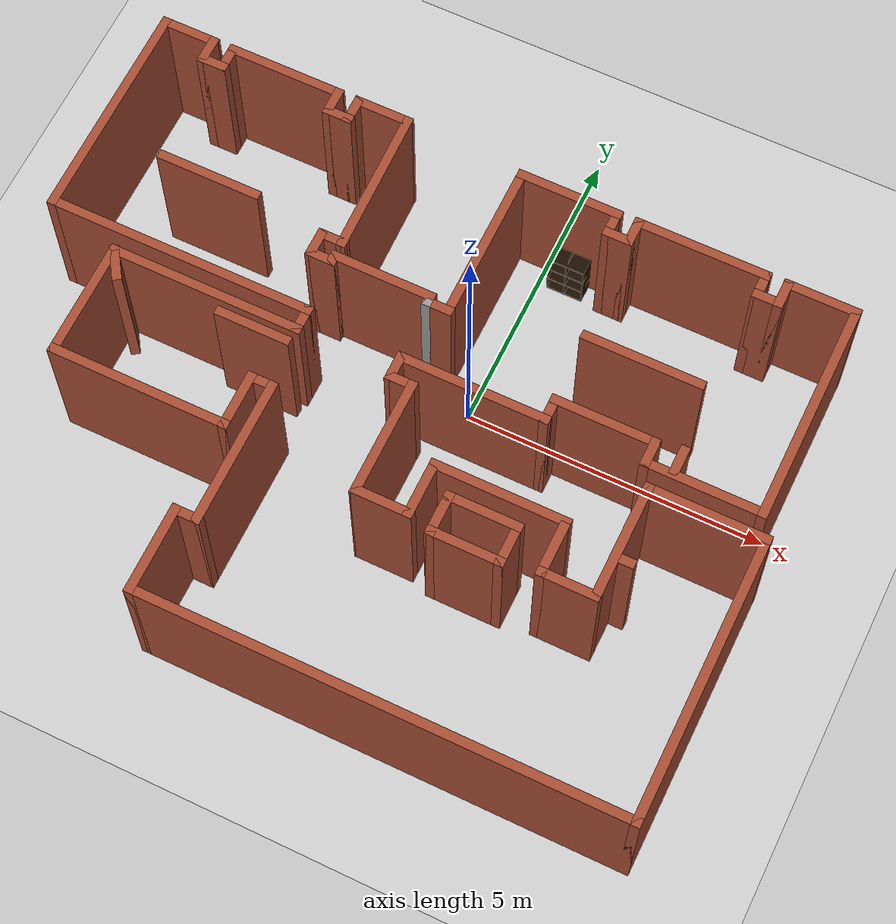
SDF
<sdf version="1.6">
 <world name="default">
  <light name="sun" type="directional">
   <pose>0 0 10 0 -0 0</pose>
   <diffuse>0.8 0.8 0.8 1</diffuse>
   <specular>0.2 0.2 0.2 1</specular>
   <attenuation>
    <range>1000</range>
    <constant>0.9</constant>
    <linear>0.01</linear>
    <quadratic>0.001</quadratic>
   </attenuation>
   <direction>-0.5 0.1 -0.9</direction>
  </light>
  <model name="ground_plane">
   <static>1</static>
   <link name="link">
    <collision name="collision">
     <geometry><plane><normal>0 0 1</normal><size>100 100</size></plane></geometry>
     <surface>
      <contact><collide_bitmask>65535</collide_bitmask></contact>
      <friction><ode><mu>100</mu><mu2>50</mu2></ode></friction>
     </surface>
    </collision>
    <visual name="visual">
     <cast_shadows>0</cast_shadows>
     <geometry><plane><normal>0 0 1</normal><size>100 100</size></plane></geometry>
     <material>
      <script><uri>file://media/materials/scripts/gazebo.material</uri><name>Gazebo/Grey</name></script>
     </material>
    </visual>
   </link>
  </model>
  <gravity>0 0 -9.8</gravity>
  <magnetic_field>6e-06 2.3e-05 -4.2e-05</magnetic_field>
  <atmosphere type="adiabatic"/>
  <physics name="default_physics" default="0" type="ode">
   <max_step_size>0.001</max_step_size>
   <real_time_factor>1</real_time_factor>
   <real_time_update_rate>1000</real_time_update_rate>
  </physics>
  <scene><ambient>0.4 0.4 0.4 1</ambient><background>0.7 0.7 0.7 1</background><shadows>1</shadows></scene>
  <audio><device>default</device></audio>
  <spherical_coordinates>
   <surface_model>EARTH_WGS84</surface_model>
   <latitude_deg>0</latitude_deg>
   <longitude_deg>0</longitude_deg>
   <elevation>0</elevation>
   <heading_deg>0</heading_deg>
  </spherical_coordinates>
  <model name="map_34">
   <pose>-0.8116 -1.2217 0 0 -0 0</pose>
   <link name="Wall_0">
    <collision name="Wall_0_Collision">
     <geometry><box><size>1 0.15 2.5</size></box></geometry>
     <pose>0 0 1.25 0 -0 0</pose>
    </collision>
    <visual name="Wall_0_Visual">
     <pose>0 0 1.25 0 -0 0</pose>
     <geometry><box><size>1 0.15 2.5</size></box></geometry>
     <material>
      <script><uri>file://media/materials/scripts/gazebo.material</uri><name>Gazebo/Bricks</name></script>
      <ambient>1 1 1 1</ambient>
     </material>
     <meta><layer>0</layer></meta>
    </visual>
    <pose>-2.15 4.32421 0 0 -0 3.14159</pose>
   </link>
   <link name="Wall_1">
    <collision name="Wall_1_Collision">
     <geometry><box><size>0.5 0.15 2.5</size></box></geometry>
     <pose>0 0 1.25 0 -0 0</pose>
    </collision>
    <visual name="Wall_1_Visual">
     <pose>0 0 1.25 0 -0 0</pose>
     <geometry><box><size>0.5 0.15 2.5</size></box></geometry>
     <material>
      <script><uri>file://media/materials/scripts/gazebo.material</uri><name>Gazebo/Bricks</name></script>
      <ambient>1 1 1 1</ambient>
     </material>
     <meta><layer>0</layer></meta>
    </visual>
    <pose>-2.575 4.14921 0 0 -0 -1.5708</pose>
   </link>
   <link name="Wall_10">
    <collision name="Wall_10_Collision">
     <geometry><box><size>0.5 0.15 2.5</size></box></geometry>
     <pose>0 0 1.25 0 -0 0</pose>
    </collision>
    <visual name="Wall_10_Visual">
     <pose>0 0 1.25 0 -0 0</pose>
     <geometry><box><size>0.5 0.15 2.5</size></box></geometry>
     <material>
      <script><uri>file://media/materials/scripts/gazebo.material</uri><name>Gazebo/Bricks</name></script>
      <ambient>1 1 1 1</ambient>
     </material>
     <meta><layer>0</layer></meta>
    </visual>
    <pose>-4.95 3.97421 0 0 -0 3.14159</pose>
   </link>
   <link name="Wall_11">
    <collision name="Wall_11_Collision">
     <geometry><box><size>0.5 0.15 2.5</size></box></geometry>
     <pose>0 0 1.25 0 -0 0</pose>
    </collision>
    <visual name="Wall_11_Visual">
     <pose>0 0 1.25 0 -0 0</pose>
     <geometry><box><size>0.5 0.15 2.5</size></box></geometry>
     <material>
      <script><uri>file://media/materials/scripts/gazebo.material</uri><name>Gazebo/Bricks</name></script>
      <ambient>1 1 1 1</ambient>
     </material>
     <meta><layer>0</layer></meta>
    </visual>
    <pose>-5.125 4.14921 0 0 -0 1.5708</pose>
   </link>
   <link name="Wall_12">
    <collision name="Wall_12_Collision">
     <geometry><box><size>1 0.15 2.5</size></box></geometry>
     <pose>0 0 1.25 0 -0 0</pose>
    </collision>
    <visual name="Wall_12_Visual">
     <pose>0 0 1.25 0 -0 0</pose>
     <geometry><box><size>1 0.15 2.5</size></box></geometry>
     <material>
      <script><uri>file://media/materials/scripts/gazebo.material</uri><name>Gazebo/Bricks</name></script>
      <ambient>1 1 1 1</ambient>
     </material>
     <meta><layer>0</layer></meta>
    </visual>
    <pose>-5.55 4.32421 0 0 -0 3.14159</pose>
   </link>
   <link name="Wall_13">
    <collision name="Wall_13_Collision">
     <geometry><box><size>3.75 0.15 2.5</size></box></geometry>
     <pose>0 0 1.25 0 -0 0</pose>
    </collision>
    <visual name="Wall_13_Visual">
     <pose>0 0 1.25 0 -0 0</pose>
     <geometry><box><size>3.75 0.15 2.5</size></box></geometry>
     <material>
      <script><uri>file://media/materials/scripts/gazebo.material</uri><name>Gazebo/Bricks</name></script>
      <ambient>1 1 1 1</ambient>
     </material>
     <meta><layer>0</layer></meta>
    </visual>
    <pose>-5.975 2.52421 0 0 -0 -1.5708</pose>
   </link>
   <link name="Wall_14">
    <collision name="Wall_14_Collision">
     <geometry><box><size>4.5 0.15 2.5</size></box></geometry>
     <pose>0 0 1.25 0 -0 0</pose>
    </collision>
    <visual name="Wall_14_Visual">
     <pose>0 0 1.25 0 -0 0</pose>
     <geometry><box><size>4.5 0.15 2.5</size></box></geometry>
     <material>
      <script><uri>file://media/materials/scripts/gazebo.material</uri><name>Gazebo/Bricks</name></script>
      <ambient>1 1 1 1</ambient>
     </material>
     <meta><layer>0</layer></meta>
    </visual>
    <pose>-3.8 0.724211 0 0 -0 0</pose>
   </link>
   <link name="Wall_15">
    <collision name="Wall_15_Collision">
     <geometry><box><size>0.5 0.15 2.5</size></box></geometry>
     <pose>0 0 1.25 0 -0 0</pose>
    </collision>
    <visual name="Wall_15_Visual">
     <pose>0 0 1.25 0 -0 0</pose>
     <geometry><box><size>0.5 0.15 2.5</size></box></geometry>
     <material>
      <script><uri>file://media/materials/scripts/gazebo.material</uri><name>Gazebo/Bricks</name></script>
      <ambient>1 1 1 1</ambient>
     </material>
     <meta><layer>0</layer></meta>
    </visual>
    <pose>-1.625 0.549211 0 0 -0 -1.5708</pose>
   </link>
   <link name="Wall_16">
    <collision name="Wall_16_Collision">
     <geometry><box><size>3.25 0.15 2.5</size></box></geometry>
     <pose>0 0 1.25 0 -0 0</pose>
    </collision>
    <visual name="Wall_16_Visual">
     <pose>0 0 1.25 0 -0 0</pose>
     <geometry><box><size>3.25 0.15 2.5</size></box></geometry>
     <material>
      <script><uri>file://media/materials/scripts/gazebo.material</uri><name>Gazebo/Bricks</name></script>
      <ambient>1 1 1 1</ambient>
     </material>
     <meta><layer>0</layer></meta>
    </visual>
    <pose>-3.175 0.374211 0 0 -0 3.14159</pose>
   </link>
   <link name="Wall_17">
    <collision name="Wall_17_Collision">
     <geometry><box><size>2 0.15 2.5</size></box></geometry>
     <pose>0 0 1.25 0 -0 0</pose>
    </collision>
    <visual name="Wall_17_Visual">
     <pose>0 0 1.25 0 -0 0</pose>
     <geometry><box><size>2 0.15 2.5</size></box></geometry>
     <material>
      <script><uri>file://media/materials/scripts/gazebo.material</uri><name>Gazebo/Bricks</name></script>
      <ambient>1 1 1 1</ambient>
     </material>
     <meta><layer>0</layer></meta>
    </visual>
    <pose>-4.725 -0.550789 0 0 -0 -1.5708</pose>
   </link>
   <link name="Wall_18">
    <collision name="Wall_18_Collision">
     <geometry><box><size>3 0.15 2.5</size></box></geometry>
     <pose>0 0 1.25 0 -0 0</pose>
    </collision>
    <visual name="Wall_18_Visual">
     <pose>0 0 1.25 0 -0 0</pose>
     <geometry><box><size>3 0.15 2.5</size></box></geometry>
     <material>
      <script><uri>file://media/materials/scripts/gazebo.material</uri><name>Gazebo/Bricks</name></script>
      <ambient>1 1 1 1</ambient>
     </material>
     <meta><layer>0</layer></meta>
    </visual>
    <pose>-3.3 -1.47579 0 0 -0 0</pose>
   </link>
   <link name="Wall_19">
    <collision name="Wall_19_Collision">
     <geometry><box><size>1 0.15 2.5</size></box></geometry>
     <pose>0 0 1.25 0 -0 0</pose>
    </collision>
    <visual name="Wall_19_Visual">
     <pose>0 0 1.25 0 -0 0</pose>
     <geometry><box><size>1 0.15 2.5</size></box></geometry>
     <material>
      <script><uri>file://media/materials/scripts/gazebo.material</uri><name>Gazebo/Bricks</name></script>
      <ambient>1 1 1 1</ambient>
     </material>
     <meta><layer>0</layer></meta>
    </visual>
    <pose>-1.875 -1.05079 0 0 -0 1.5708</pose>
   </link>
   <link name="Wall_2">
    <collision name="Wall_2_Collision">
     <geometry><box><size>0.5 0.15 2.5</size></box></geometry>
     <pose>0 0 1.25 0 -0 0</pose>
    </collision>
    <visual name="Wall_2_Visual">
     <pose>0 0 1.25 0 -0 0</pose>
     <geometry><box><size>0.5 0.15 2.5</size></box></geometry>
     <material>
      <script><uri>file://media/materials/scripts/gazebo.material</uri><name>Gazebo/Bricks</name></script>
      <ambient>1 1 1 1</ambient>
     </material>
     <meta><layer>0</layer></meta>
    </visual>
    <pose>-2.75 3.97421 0 0 -0 3.14159</pose>
   </link>
   <link name="Wall_20">
    <collision name="Wall_20_Collision">
     <geometry><box><size>0.5 0.15 2.5</size></box></geometry>
     <pose>0 0 1.25 0 -0 0</pose>
    </collision>
    <visual name="Wall_20_Visual">
     <pose>0 0 1.25 0 -0 0</pose>
     <geometry><box><size>0.5 0.15 2.5</size></box></geometry>
     <material>
      <script><uri>file://media/materials/scripts/gazebo.material</uri><name>Gazebo/Bricks</name></script>
      <ambient>1 1 1 1</ambient>
     </material>
     <meta><layer>0</layer></meta>
    </visual>
    <pose>-1.7 -0.625789 0 0 -0 0</pose>
   </link>
   <link name="Wall_21">
    <collision name="Wall_21_Collision">
     <geometry><box><size>2.5 0.15 2.5</size></box></geometry>
     <pose>0 0 1.25 0 -0 0</pose>
    </collision>
    <visual name="Wall_21_Visual">
     <pose>0 0 1.25 0 -0 0</pose>
     <geometry><box><size>2.5 0.15 2.5</size></box></geometry>
     <material>
      <script><uri>file://media/materials/scripts/gazebo.material</uri><name>Gazebo/Bricks</name></script>
      <ambient>1 1 1 1</ambient>
     </material>
     <meta><layer>0</layer></meta>
    </visual>
    <pose>-1.525 -1.80079 0 0 -0 -1.5708</pose>
   </link>
   <link name="Wall_22">
    <collision name="Wall_22_Collision">
     <geometry><box><size>0.5 0.15 2.5</size></box></geometry>
     <pose>0 0 1.25 0 -0 0</pose>
    </collision>
    <visual name="Wall_22_Visual">
     <pose>0 0 1.25 0 -0 0</pose>
     <geometry><box><size>0.5 0.15 2.5</size></box></geometry>
     <material>
      <script><uri>file://media/materials/scripts/gazebo.material</uri><name>Gazebo/Bricks</name></script>
      <ambient>1 1 1 1</ambient>
     </material>
     <meta><layer>0</layer></meta>
    </visual>
    <pose>-1.7 -2.97579 0 0 -0 3.14159</pose>
   </link>
   <link name="Wall_23">
    <collision name="Wall_23_Collision">
     <geometry><box><size>1.5 0.15 2.5</size></box></geometry>
     <pose>0 0 1.25 0 -0 0</pose>
    </collision>
    <visual name="Wall_23_Visual">
     <pose>0 0 1.25 0 -0 0</pose>
     <geometry><box><size>1.5 0.15 2.5</size></box></geometry>
     <material>
      <script><uri>file://media/materials/scripts/gazebo.material</uri><name>Gazebo/Bricks</name></script>
      <ambient>1 1 1 1</ambient>
     </material>
     <meta><layer>0</layer></meta>
    </visual>
    <pose>-1.875 -3.65079 0 0 -0 -1.5708</pose>
   </link>
   <link name="Wall_24">
    <collision name="Wall_24_Collision">
     <geometry><box><size>8 0.15 2.5</size></box></geometry>
     <pose>0 0 1.25 0 -0 0</pose>
    </collision>
    <visual name="Wall_24_Visual">
     <pose>0 0 1.25 0 -0 0</pose>
     <geometry><box><size>8 0.15 2.5</size></box></geometry>
     <material>
      <script><uri>file://media/materials/scripts/gazebo.material</uri><name>Gazebo/Bricks</name></script>
      <ambient>0.435294 0.796078 0.67451 1</ambient>
     </material>
     <meta><layer>0</layer></meta>
    </visual>
    <pose>2.05 -4.32579 0 0 -0 0</pose>
   </link>
   <link name="Wall_25">
    <collision name="Wall_25_Collision">
     <geometry><box><size>4.75 0.15 2.5</size></box></geometry>
     <pose>0 0 1.25 0 -0 0</pose>
    </collision>
    <visual name="Wall_25_Visual">
     <pose>0 0 1.25 0 -0 0</pose>
     <geometry><box><size>4.75 0.15 2.5</size></box></geometry>
     <material>
      <script><uri>file://media/materials/scripts/gazebo.material</uri><name>Gazebo/Bricks</name></script>
      <ambient>1 1 1 1</ambient>
     </material>
     <meta><layer>0</layer></meta>
    </visual>
    <pose>5.975 -2.02579 0 0 -0 1.5708</pose>
   </link>
   <link name="Wall_26">
    <collision name="Wall_26_Collision">
     <geometry><box><size>2 0.15 2.5</size></box></geometry>
     <pose>0 0 1.25 0 -0 0</pose>
    </collision>
    <visual name="Wall_26_Visual">
     <pose>0 0 1.25 0 -0 0</pose>
     <geometry><box><size>2 0.15 2.5</size></box></geometry>
     <material>
      <script><uri>file://media/materials/scripts/gazebo.material</uri><name>Gazebo/Bricks</name></script>
      <ambient>1 1 1 1</ambient>
     </material>
     <meta><layer>0</layer></meta>
    </visual>
    <pose>5.05 0.274211 0 0 -0 3.14159</pose>
   </link>
   <link name="Wall_27">
    <collision name="Wall_27_Collision">
     <geometry><box><size>2 0.15 2.5</size></box></geometry>
     <pose>0 0 1.25 0 -0 0</pose>
    </collision>
    <visual name="Wall_27_Visual">
     <pose>0 0 1.25 0 -0 0</pose>
     <geometry><box><size>2 0.15 2.5</size></box></geometry>
     <material>
      <script><uri>file://media/materials/scripts/gazebo.material</uri><name>Gazebo/Bricks</name></script>
      <ambient>1 1 1 1</ambient>
     </material>
     <meta><layer>0</layer></meta>
    </visual>
    <pose>4.125 -0.650789 0 0 -0 -1.5708</pose>
   </link>
   <link name="Wall_28">
    <collision name="Wall_28_Collision">
     <geometry><box><size>1 0.15 2.5</size></box></geometry>
     <pose>0 0 1.25 0 -0 0</pose>
    </collision>
    <visual name="Wall_28_Visual">
     <pose>0 0 1.25 0 -0 0</pose>
     <geometry><box><size>1 0.15 2.5</size></box></geometry>
     <material>
      <script><uri>file://media/materials/scripts/gazebo.material</uri><name>Gazebo/Bricks</name></script>
      <ambient>1 1 1 1</ambient>
     </material>
     <meta><layer>0</layer></meta>
    </visual>
    <pose>3.7 -1.57579 0 0 -0 3.14159</pose>
   </link>
   <link name="Wall_29">
    <collision name="Wall_29_Collision">
     <geometry><box><size>1 0.15 2.5</size></box></geometry>
     <pose>0 0 1.25 0 -0 0</pose>
    </collision>
    <visual name="Wall_29_Visual">
     <pose>0 0 1.25 0 -0 0</pose>
     <geometry><box><size>1 0.15 2.5</size></box></geometry>
     <material>
      <script><uri>file://media/materials/scripts/gazebo.material</uri><name>Gazebo/Bricks</name></script>
      <ambient>1 1 1 1</ambient>
     </material>
     <meta><layer>0</layer></meta>
    </visual>
    <pose>3.275 -1.15079 0 0 -0 1.5708</pose>
   </link>
   <link name="Wall_30">
    <collision name="Wall_30_Collision">
     <geometry><box><size>2.25 0.15 2.5</size></box></geometry>
     <pose>0 0 1.25 0 -0 0</pose>
    </collision>
    <visual name="Wall_30_Visual">
     <pose>0 0 1.25 0 -0 0</pose>
     <geometry><box><size>2.25 0.15 2.5</size></box></geometry>
     <material>
      <script><uri>file://media/materials/scripts/gazebo.material</uri><name>Gazebo/Bricks</name></script>
      <ambient>1 1 1 1</ambient>
     </material>
     <meta><layer>0</layer></meta>
    </visual>
    <pose>2.225 -0.725789 0 0 -0 3.14159</pose>
   </link>
   <link name="Wall_31">
    <collision name="Wall_31_Collision">
     <geometry><box><size>1 0.15 2.5</size></box></geometry>
     <pose>0 0 1.25 0 -0 0</pose>
    </collision>
    <visual name="Wall_31_Visual">
     <pose>0 0 1.25 0 -0 0</pose>
     <geometry><box><size>1 0.15 2.5</size></box></geometry>
     <material>
      <script><uri>file://media/materials/scripts/gazebo.material</uri><name>Gazebo/Bricks</name></script>
      <ambient>1 1 1 1</ambient>
     </material>
     <meta><layer>0</layer></meta>
    </visual>
    <pose>1.175 -1.15079 0 0 -0 -1.5708</pose>
   </link>
   <link name="Wall_32">
    <collision name="Wall_32_Collision">
     <geometry><box><size>1 0.15 2.5</size></box></geometry>
     <pose>0 0 1.25 0 -0 0</pose>
    </collision>
    <visual name="Wall_32_Visual">
     <pose>0 0 1.25 0 -0 0</pose>
     <geometry><box><size>1 0.15 2.5</size></box></geometry>
     <material>
      <script><uri>file://media/materials/scripts/gazebo.material</uri><name>Gazebo/Bricks</name></script>
      <ambient>1 1 1 1</ambient>
     </material>
     <meta><layer>0</layer></meta>
    </visual>
    <pose>0.75 -1.57579 0 0 -0 3.14159</pose>
   </link>
   <link name="Wall_33">
    <collision name="Wall_33_Collision">
     <geometry><box><size>2 0.15 2.5</size></box></geometry>
     <pose>0 0 1.25 0 -0 0</pose>
    </collision>
    <visual name="Wall_33_Visual">
     <pose>0 0 1.25 0 -0 0</pose>
     <geometry><box><size>2 0.15 2.5</size></box></geometry>
     <material>
      <script><uri>file://media/materials/scripts/gazebo.material</uri><name>Gazebo/Bricks</name></script>
      <ambient>1 1 1 1</ambient>
     </material>
     <meta><layer>0</layer></meta>
    </visual>
    <pose>0.325 -0.650789 0 0 -0 1.5708</pose>
   </link>
   <link name="Wall_34">
    <collision name="Wall_34_Collision">
     <geometry><box><size>0.5 0.15 2.5</size></box></geometry>
     <pose>0 0 1.25 0 -0 0</pose>
    </collision>
    <visual name="Wall_34_Visual">
     <pose>0 0 1.25 0 -0 0</pose>
     <geometry><box><size>0.5 0.15 2.5</size></box></geometry>
     <material>
      <script><uri>file://media/materials/scripts/gazebo.material</uri><name>Gazebo/Bricks</name></script>
      <ambient>1 1 1 1</ambient>
     </material>
     <meta><layer>0</layer></meta>
    </visual>
    <pose>0.15 0.274211 0 0 -0 3.14159</pose>
   </link>
   <link name="Wall_35">
    <collision name="Wall_35_Collision">
     <geometry><box><size>0.5 0.15 2.5</size></box></geometry>
     <pose>0 0 1.25 0 -0 0</pose>
    </collision>
    <visual name="Wall_35_Visual">
     <pose>0 0 1.25 0 -0 0</pose>
     <geometry><box><size>0.5 0.15 2.5</size></box></geometry>
     <material>
      <script><uri>file://media/materials/scripts/gazebo.material</uri><name>Gazebo/Bricks</name></script>
      <ambient>1 1 1 1</ambient>
     </material>
     <meta><layer>0</layer></meta>
    </visual>
    <pose>-0.025 0.449211 0 0 -0 1.5708</pose>
   </link>
   <link name="Wall_36">
    <collision name="Wall_36_Collision">
     <geometry><box><size>2.5 0.15 2.5</size></box></geometry>
     <pose>0 0 1.25 0 -0 0</pose>
    </collision>
    <visual name="Wall_36_Visual">
     <pose>0 0 1.25 0 -0 0</pose>
     <geometry><box><size>2.5 0.15 2.5</size></box></geometry>
     <material>
      <script><uri>file://media/materials/scripts/gazebo.material</uri><name>Gazebo/Bricks</name></script>
      <ambient>1 1 1 1</ambient>
     </material>
     <meta><layer>0</layer></meta>
    </visual>
    <pose>1.15 0.624211 0 0 -0 0</pose>
   </link>
   <link name="Wall_37">
    <collision name="Wall_37_Collision">
     <geometry><box><size>0.5 0.15 2.5</size></box></geometry>
     <pose>0 0 1.25 0 -0 0</pose>
    </collision>
    <visual name="Wall_37_Visual">
     <pose>0 0 1.25 0 -0 0</pose>
     <geometry><box><size>0.5 0.15 2.5</size></box></geometry>
     <material>
      <script><uri>file://media/materials/scripts/gazebo.material</uri><name>Gazebo/Bricks</name></script>
      <ambient>1 1 1 1</ambient>
     </material>
     <meta><layer>0</layer></meta>
    </visual>
    <pose>2.325 0.799211 0 0 -0 1.5708</pose>
   </link>
   <link name="Wall_38">
    <collision name="Wall_38_Collision">
     <geometry><box><size>1.75 0.15 2.5</size></box></geometry>
     <pose>0 0 1.25 0 -0 0</pose>
    </collision>
    <visual name="Wall_38_Visual">
     <pose>0 0 1.25 0 -0 0</pose>
     <geometry><box><size>1.75 0.15 2.5</size></box></geometry>
     <material>
      <script><uri>file://media/materials/scripts/gazebo.material</uri><name>Gazebo/Bricks</name></script>
      <ambient>1 1 1 1</ambient>
     </material>
     <meta><layer>0</layer></meta>
    </visual>
    <pose>3.125 0.974211 0 0 -0 0</pose>
   </link>
   <link name="Wall_39">
    <collision name="Wall_39_Collision">
     <geometry><box><size>0.5 0.15 2.5</size></box></geometry>
     <pose>0 0 1.25 0 -0 0</pose>
    </collision>
    <visual name="Wall_39_Visual">
     <pose>0 0 1.25 0 -0 0</pose>
     <geometry><box><size>0.5 0.15 2.5</size></box></geometry>
     <material>
      <script><uri>file://media/materials/scripts/gazebo.material</uri><name>Gazebo/Bricks</name></script>
      <ambient>1 1 1 1</ambient>
     </material>
     <meta><layer>0</layer></meta>
    </visual>
    <pose>3.925 0.799211 0 0 -0 -1.5708</pose>
   </link>
   <link name="Wall_40">
    <collision name="Wall_40_Collision">
     <geometry><box><size>2 0.15 2.5</size></box></geometry>
     <pose>0 0 1.25 0 -0 0</pose>
    </collision>
    <visual name="Wall_40_Visual">
     <pose>0 0 1.25 0 -0 0</pose>
     <geometry><box><size>2 0.15 2.5</size></box></geometry>
     <material>
      <script><uri>file://media/materials/scripts/gazebo.material</uri><name>Gazebo/Bricks</name></script>
      <ambient>1 1 1 1</ambient>
     </material>
     <meta><layer>0</layer></meta>
    </visual>
    <pose>4.85 0.624211 0 0 -0 0</pose>
   </link>
   <link name="Wall_5">
    <collision name="Wall_5_Collision">
     <geometry><box><size>0.5 0.15 2.5</size></box></geometry>
     <pose>0 0 1.25 0 -0 0</pose>
    </collision>
    <visual name="Wall_5_Visual">
     <pose>0 0 1.25 0 -0 0</pose>
     <geometry><box><size>0.5 0.15 2.5</size></box></geometry>
     <material>
      <script><uri>file://media/materials/scripts/gazebo.material</uri><name>Gazebo/Bricks</name></script>
      <ambient>1 1 1 1</ambient>
     </material>
     <meta><layer>0</layer></meta>
    </visual>
    <pose>-2.925 4.14921 0 0 -0 1.5708</pose>
   </link>
   <link name="Wall_54">
    <collision name="Wall_54_Collision">
     <geometry><box><size>3.75 0.15 2.5</size></box></geometry>
     <pose>0 0 1.25 0 -0 0</pose>
    </collision>
    <visual name="Wall_54_Visual">
     <pose>0 0 1.25 0 -0 0</pose>
     <geometry><box><size>3.75 0.15 2.5</size></box></geometry>
     <material>
      <script><uri>file://media/materials/scripts/gazebo.material</uri><name>Gazebo/Bricks</name></script>
      <ambient>1 1 1 1</ambient>
     </material>
     <meta><layer>0</layer></meta>
    </visual>
    <pose>5.775 2.42421 0 0 -0 1.5708</pose>
   </link>
   <link name="Wall_55">
    <collision name="Wall_55_Collision">
     <geometry><box><size>1.25 0.15 2.5</size></box></geometry>
     <pose>0 0 1.25 0 -0 0</pose>
    </collision>
    <visual name="Wall_55_Visual">
     <pose>0 0 1.25 0 -0 0</pose>
     <geometry><box><size>1.25 0.15 2.5</size></box></geometry>
     <material>
      <script><uri>file://media/materials/scripts/gazebo.material</uri><name>Gazebo/Bricks</name></script>
      <ambient>1 1 1 1</ambient>
     </material>
     <meta><layer>0</layer></meta>
    </visual>
    <pose>5.225 4.22421 0 0 -0 3.14159</pose>
   </link>
   <link name="Wall_56">
    <collision name="Wall_56_Collision">
     <geometry><box><size>0.5 0.15 2.5</size></box></geometry>
     <pose>0 0 1.25 0 -0 0</pose>
    </collision>
    <visual name="Wall_56_Visual">
     <pose>0 0 1.25 0 -0 0</pose>
     <geometry><box><size>0.5 0.15 2.5</size></box></geometry>
     <material>
      <script><uri>file://media/materials/scripts/gazebo.material</uri><name>Gazebo/Bricks</name></script>
      <ambient>1 1 1 1</ambient>
     </material>
     <meta><layer>0</layer></meta>
    </visual>
    <pose>4.675 4.04921 0 0 -0 -1.5708</pose>
   </link>
   <link name="Wall_57">
    <collision name="Wall_57_Collision">
     <geometry><box><size>0.5 0.15 2.5</size></box></geometry>
     <pose>0 0 1.25 0 -0 0</pose>
    </collision>
    <visual name="Wall_57_Visual">
     <pose>0 0 1.25 0 -0 0</pose>
     <geometry><box><size>0.5 0.15 2.5</size></box></geometry>
     <material>
      <script><uri>file://media/materials/scripts/gazebo.material</uri><name>Gazebo/Bricks</name></script>
      <ambient>1 1 1 1</ambient>
     </material>
     <meta><layer>0</layer></meta>
    </visual>
    <pose>4.5 3.87421 0 0 -0 3.14159</pose>
   </link>
   <link name="Wall_58">
    <collision name="Wall_58_Collision">
     <geometry><box><size>0.5 0.15 2.5</size></box></geometry>
     <pose>0 0 1.25 0 -0 0</pose>
    </collision>
    <visual name="Wall_58_Visual">
     <pose>0 0 1.25 0 -0 0</pose>
     <geometry><box><size>0.5 0.15 2.5</size></box></geometry>
     <material>
      <script><uri>file://media/materials/scripts/gazebo.material</uri><name>Gazebo/Bricks</name></script>
      <ambient>1 1 1 1</ambient>
     </material>
     <meta><layer>0</layer></meta>
    </visual>
    <pose>4.325 4.04921 0 0 -0 1.5708</pose>
   </link>
   <link name="Wall_59">
    <collision name="Wall_59_Collision">
     <geometry><box><size>2.25 0.15 2.5</size></box></geometry>
     <pose>0 0 1.25 0 -0 0</pose>
    </collision>
    <visual name="Wall_59_Visual">
     <pose>0 0 1.25 0 -0 0</pose>
     <geometry><box><size>2.25 0.15 2.5</size></box></geometry>
     <material>
      <script><uri>file://media/materials/scripts/gazebo.material</uri><name>Gazebo/Bricks</name></script>
      <ambient>1 1 1 1</ambient>
     </material>
     <meta><layer>0</layer></meta>
    </visual>
    <pose>3.275 4.22421 0 0 -0 3.14159</pose>
   </link>
   <link name="Wall_60">
    <collision name="Wall_60_Collision">
     <geometry><box><size>0.5 0.15 2.5</size></box></geometry>
     <pose>0 0 1.25 0 -0 0</pose>
    </collision>
    <visual name="Wall_60_Visual">
     <pose>0 0 1.25 0 -0 0</pose>
     <geometry><box><size>0.5 0.15 2.5</size></box></geometry>
     <material>
      <script><uri>file://media/materials/scripts/gazebo.material</uri><name>Gazebo/Bricks</name></script>
      <ambient>1 1 1 1</ambient>
     </material>
     <meta><layer>0</layer></meta>
    </visual>
    <pose>2.225 4.04921 0 0 -0 -1.5708</pose>
   </link>
   <link name="Wall_63">
    <collision name="Wall_63_Collision">
     <geometry><box><size>0.5 0.15 2.5</size></box></geometry>
     <pose>0 0 1.25 0 -0 0</pose>
    </collision>
    <visual name="Wall_63_Visual">
     <pose>0 0 1.25 0 -0 0</pose>
     <geometry><box><size>0.5 0.15 2.5</size></box></geometry>
     <material>
      <script><uri>file://media/materials/scripts/gazebo.material</uri><name>Gazebo/Bricks</name></script>
      <ambient>1 1 1 1</ambient>
     </material>
     <meta><layer>0</layer></meta>
    </visual>
    <pose>2.05 3.87421 0 0 -0 3.14159</pose>
   </link>
   <link name="Wall_64">
    <collision name="Wall_64_Collision">
     <geometry><box><size>0.5 0.15 2.5</size></box></geometry>
     <pose>0 0 1.25 0 -0 0</pose>
    </collision>
    <visual name="Wall_64_Visual">
     <pose>0 0 1.25 0 -0 0</pose>
     <geometry><box><size>0.5 0.15 2.5</size></box></geometry>
     <material>
      <script><uri>file://media/materials/scripts/gazebo.material</uri><name>Gazebo/Bricks</name></script>
      <ambient>1 1 1 1</ambient>
     </material>
     <meta><layer>0</layer></meta>
    </visual>
    <pose>1.875 4.04921 0 0 -0 1.5708</pose>
   </link>
   <link name="Wall_65">
    <collision name="Wall_65_Collision">
     <geometry><box><size>1.75 0.15 2.5</size></box></geometry>
     <pose>0 0 1.25 0 -0 0</pose>
    </collision>
    <visual name="Wall_65_Visual">
     <pose>0 0 1.25 0 -0 0</pose>
     <geometry><box><size>1.75 0.15 2.5</size></box></geometry>
     <material>
      <script><uri>file://media/materials/scripts/gazebo.material</uri><name>Gazebo/Bricks</name></script>
      <ambient>1 1 1 1</ambient>
     </material>
     <meta><layer>0</layer></meta>
    </visual>
    <pose>1.075 4.22421 0 0 -0 3.14159</pose>
   </link>
   <link name="Wall_66">
    <collision name="Wall_66_Collision">
     <geometry><box><size>2.75 0.15 2.5</size></box></geometry>
     <pose>0 0 1.25 0 -0 0</pose>
    </collision>
    <visual name="Wall_66_Visual">
     <pose>0 0 1.25 0 -0 0</pose>
     <geometry><box><size>2.75 0.15 2.5</size></box></geometry>
     <material>
      <script><uri>file://media/materials/scripts/gazebo.material</uri><name>Gazebo/Bricks</name></script>
      <ambient>1 1 1 1</ambient>
     </material>
     <meta><layer>0</layer></meta>
    </visual>
    <pose>0.275 2.92421 0 0 -0 -1.5708</pose>
   </link>
   <link name="Wall_67">
    <collision name="Wall_67_Collision">
     <geometry><box><size>0.5 0.15 2.5</size></box></geometry>
     <pose>0 0 1.25 0 -0 0</pose>
    </collision>
    <visual name="Wall_67_Visual">
     <pose>0 0 1.25 0 -0 0</pose>
     <geometry><box><size>0.5 0.15 2.5</size></box></geometry>
     <material>
      <script><uri>file://media/materials/scripts/gazebo.material</uri><name>Gazebo/Bricks</name></script>
      <ambient>1 1 1 1</ambient>
     </material>
     <meta><layer>0</layer></meta>
    </visual>
    <pose>0.1 1.62421 0 0 -0 3.14159</pose>
   </link>
   <link name="Wall_68">
    <collision name="Wall_68_Collision">
     <geometry><box><size>0.25 0.15 2.5</size></box></geometry>
     <pose>0 0 1.25 0 -0 0</pose>
    </collision>
    <visual name="Wall_68_Visual">
     <pose>0 0 1.25 0 -0 0</pose>
     <geometry><box><size>0.25 0.15 2.5</size></box></geometry>
     <material>
      <script><uri>file://media/materials/scripts/gazebo.material</uri><name>Gazebo/Grey</name></script>
      <ambient>1 1 1 1</ambient>
     </material>
     <meta><layer>0</layer></meta>
    </visual>
    <pose>-0.075 1.67421 0 0 -0 1.5708</pose>
   </link>
   <link name="Wall_69">
    <collision name="Wall_69_Collision">
     <geometry><box><size>1.75 0.15 2.5</size></box></geometry>
     <pose>0 0 1.25 0 -0 0</pose>
    </collision>
    <visual name="Wall_69_Visual">
     <pose>0 0 1.25 0 -0 0</pose>
     <geometry><box><size>1.75 0.15 2.5</size></box></geometry>
     <material>
      <script><uri>file://media/materials/scripts/gazebo.material</uri><name>Gazebo/Bricks</name></script>
      <ambient>1 1 1 1</ambient>
     </material>
     <meta><layer>0</layer></meta>
    </visual>
    <pose>-0.875 1.72421 0 0 -0 3.14159</pose>
   </link>
   <link name="Wall_70">
    <collision name="Wall_70_Collision">
     <geometry><box><size>0.25 0.15 2.5</size></box></geometry>
     <pose>0 0 1.25 0 -0 0</pose>
    </collision>
    <visual name="Wall_70_Visual">
     <pose>0 0 1.25 0 -0 0</pose>
     <geometry><box><size>0.25 0.15 2.5</size></box></geometry>
     <material>
      <script><uri>file://media/materials/scripts/gazebo.material</uri><name>Gazebo/Bricks</name></script>
      <ambient>1 1 1 1</ambient>
     </material>
     <meta><layer>0</layer></meta>
    </visual>
    <pose>-1.675 1.67421 0 0 -0 -1.5708</pose>
   </link>
   <link name="Wall_71">
    <collision name="Wall_71_Collision">
     <geometry><box><size>0.5 0.15 2.5</size></box></geometry>
     <pose>0 0 1.25 0 -0 0</pose>
    </collision>
    <visual name="Wall_71_Visual">
     <pose>0 0 1.25 0 -0 0</pose>
     <geometry><box><size>0.5 0.15 2.5</size></box></geometry>
     <material>
      <script><uri>file://media/materials/scripts/gazebo.material</uri><name>Gazebo/Bricks</name></script>
      <ambient>1 1 1 1</ambient>
     </material>
     <meta><layer>0</layer></meta>
    </visual>
    <pose>-1.85 1.62421 0 0 -0 3.14159</pose>
   </link>
   <link name="Wall_72">
    <collision name="Wall_72_Collision">
     <geometry><box><size>0.5 0.15 2.5</size></box></geometry>
     <pose>0 0 1.25 0 -0 0</pose>
    </collision>
    <visual name="Wall_72_Visual">
     <pose>0 0 1.25 0 -0 0</pose>
     <geometry><box><size>0.5 0.15 2.5</size></box></geometry>
     <material>
      <script><uri>file://media/materials/scripts/gazebo.material</uri><name>Gazebo/Bricks</name></script>
      <ambient>1 1 1 1</ambient>
     </material>
     <meta><layer>0</layer></meta>
    </visual>
    <pose>-2.025 1.79921 0 0 -0 1.5708</pose>
   </link>
   <link name="Wall_73">
    <collision name="Wall_73_Collision">
     <geometry><box><size>0.5 0.15 2.5</size></box></geometry>
     <pose>0 0 1.25 0 -0 0</pose>
    </collision>
    <visual name="Wall_73_Visual">
     <pose>0 0 1.25 0 -0 0</pose>
     <geometry><box><size>0.5 0.15 2.5</size></box></geometry>
     <material>
      <script><uri>file://media/materials/scripts/gazebo.material</uri><name>Gazebo/Bricks</name></script>
      <ambient>1 1 1 1</ambient>
     </material>
     <meta><layer>0</layer></meta>
    </visual>
    <pose>-1.85 1.97421 0 0 -0 0</pose>
   </link>
   <link name="Wall_74">
    <collision name="Wall_74_Collision">
     <geometry><box><size>2.50053 0.15 2.5</size></box></geometry>
     <pose>0 0 1.25 0 -0 0</pose>
    </collision>
    <visual name="Wall_74_Visual">
     <pose>0 0 1.25 0 -0 0</pose>
     <geometry><box><size>2.50053 0.15 2.5</size></box></geometry>
     <material>
      <script><uri>file://media/materials/scripts/gazebo.material</uri><name>Gazebo/Bricks</name></script>
      <ambient>1 1 1 1</ambient>
     </material>
     <meta><layer>0</layer></meta>
    </visual>
    <pose>-1.7 3.14921 0 0 -0 1.59207</pose>
   </link>
   <link name="Wall_76">
    <collision name="Wall_76_Collision">
     <geometry><box><size>1.75 0.15 2.5</size></box></geometry>
     <pose>0 0 1.25 0 -0 0</pose>
    </collision>
    <visual name="Wall_76_Visual">
     <pose>0 0 1.25 0 -0 0</pose>
     <geometry><box><size>1.75 0.15 2.5</size></box></geometry>
     <material>
      <script><uri>file://media/materials/scripts/gazebo.material</uri><name>Gazebo/Bricks</name></script>
      <ambient>1 1 1 1</ambient>
     </material>
     <meta><layer>0</layer></meta>
    </visual>
    <pose>-4.04763 2.14993 0 0 -0 0</pose>
   </link>
   <link name="Wall_78">
    <collision name="Wall_78_Collision">
     <geometry><box><size>2 0.15 2.5</size></box></geometry>
     <pose>0 0 1.25 0 -0 0</pose>
    </collision>
    <visual name="Wall_78_Visual">
     <pose>0 0 1.25 0 -0 0</pose>
     <geometry><box><size>2 0.15 2.5</size></box></geometry>
     <material>
      <script><uri>file://media/materials/scripts/gazebo.material</uri><name>Gazebo/Bricks</name></script>
      <ambient>1 1 1 1</ambient>
     </material>
     <meta><layer>0</layer></meta>
    </visual>
    <pose>3.22472 2.1268 0 0 -0 0</pose>
   </link>
   <link name="Wall_8">
    <collision name="Wall_8_Collision">
     <geometry><box><size>2 0.15 2.5</size></box></geometry>
     <pose>0 0 1.25 0 -0 0</pose>
    </collision>
    <visual name="Wall_8_Visual">
     <pose>0 0 1.25 0 -0 0</pose>
     <geometry><box><size>2 0.15 2.5</size></box></geometry>
     <material>
      <script><uri>file://media/materials/scripts/gazebo.material</uri><name>Gazebo/Bricks</name></script>
      <ambient>1 1 1 1</ambient>
     </material>
     <meta><layer>0</layer></meta>
    </visual>
    <pose>-3.85 4.32421 0 0 -0 3.14159</pose>
   </link>
   <link name="Wall_80">
    <collision name="Wall_80_Collision">
     <geometry><box><size>0.5 0.15 2.5</size></box></geometry>
     <pose>0 0 1.25 0 -0 0</pose>
    </collision>
    <visual name="Wall_80_Visual">
     <pose>0 0 1.25 0 -0 0</pose>
     <geometry><box><size>0.5 0.15 2.5</size></box></geometry>
     <material>
      <script><uri>file://media/materials/scripts/gazebo.material</uri><name>Gazebo/Bricks</name></script>
      <ambient>1 1 1 1</ambient>
     </material>
     <meta><layer>0</layer></meta>
    </visual>
    <pose>4.35835 0.864665 0 0 -0 -1.5708</pose>
   </link>
   <link name="Wall_82">
    <collision name="Wall_82_Collision">
     <geometry><box><size>1.25 0.15 2.5</size></box></geometry>
     <pose>0 0 1.25 0 -0 0</pose>
    </collision>
    <visual name="Wall_82_Visual">
     <pose>0 0 1.25 0 -0 0</pose>
     <geometry><box><size>1.25 0.15 2.5</size></box></geometry>
     <material>
      <script><uri>file://media/materials/scripts/gazebo.material</uri><name>Gazebo/Bricks</name></script>
      <ambient>1 1 1 1</ambient>
     </material>
     <meta><layer>0</layer></meta>
    </visual>
    <pose>-2.23901 0.137571 0 0 -0 0</pose>
   </link>
   <link name="Wall_84">
    <collision name="Wall_84_Collision">
     <geometry><box><size>0.25 0.15 2.5</size></box></geometry>
     <pose>0 0 1.25 0 -0 0</pose>
    </collision>
    <visual name="Wall_84_Visual">
     <pose>0 0 1.25 0 -0 0</pose>
     <geometry><box><size>0.25 0.15 2.5</size></box></geometry>
     <material>
      <script><uri>file://media/materials/scripts/gazebo.material</uri><name>Gazebo/Bricks</name></script>
      <ambient>1 1 1 1</ambient>
     </material>
     <meta><layer>0</layer></meta>
    </visual>
    <pose>4.31583 -0.903306 0 0 -0 0</pose>
   </link>
   <link name="Wall_86">
    <collision name="Wall_86_Collision">
     <geometry><box><size>0.75 0.15 2.5</size></box></geometry>
     <pose>0 0 1.25 0 -0 0</pose>
    </collision>
    <visual name="Wall_86_Visual">
     <pose>0 0 1.25 0 -0 0</pose>
     <geometry><box><size>0.75 0.15 2.5</size></box></geometry>
     <material>
      <script><uri>file://media/materials/scripts/gazebo.material</uri><name>Gazebo/Bricks</name></script>
      <ambient>1 1 1 1</ambient>
     </material>
     <meta><layer>0</layer></meta>
    </visual>
    <pose>1.58268 -1.38835 0 0 -0 -1.5708</pose>
   </link>
   <link name="Wall_87">
    <collision name="Wall_87_Collision">
     <geometry><box><size>1.25 0.15 2.5</size></box></geometry>
     <pose>0 0 1.25 0 -0 0</pose>
    </collision>
    <visual name="Wall_87_Visual">
     <pose>0 0 1.25 0 -0 0</pose>
     <geometry><box><size>1.25 0.15 2.5</size></box></geometry>
     <material>
      <script><uri>file://media/materials/scripts/gazebo.material</uri><name>Gazebo/Bricks</name></script>
      <ambient>1 1 1 1</ambient>
     </material>
     <meta><layer>0</layer></meta>
    </visual>
    <pose>2.13268 -1.68835 0 0 -0 0</pose>
   </link>
   <link name="Wall_88">
    <collision name="Wall_88_Collision">
     <geometry><box><size>0.75 0.15 2.5</size></box></geometry>
     <pose>0 0 1.25 0 -0 0</pose>
    </collision>
    <visual name="Wall_88_Visual">
     <pose>0 0 1.25 0 -0 0</pose>
     <geometry><box><size>0.75 0.15 2.5</size></box></geometry>
     <material>
      <script><uri>file://media/materials/scripts/gazebo.material</uri><name>Gazebo/Bricks</name></script>
      <ambient>1 1 1 1</ambient>
     </material>
     <meta><layer>0</layer></meta>
    </visual>
    <pose>2.68268 -1.38835 0 0 -0 1.5708</pose>
   </link>
   <link name="Wall_89">
    <collision name="Wall_89_Collision">
     <geometry><box><size>1.25 0.15 2.5</size></box></geometry>
     <pose>0 0 1.25 0 -0 0</pose>
    </collision>
    <visual name="Wall_89_Visual">
     <pose>0 0 1.25 0 -0 0</pose>
     <geometry><box><size>1.25 0.15 2.5</size></box></geometry>
     <material>
      <script><uri>file://media/materials/scripts/gazebo.material</uri><name>Gazebo/Bricks</name></script>
      <ambient>1 1 1 1</ambient>
     </material>
     <meta><layer>0</layer></meta>
    </visual>
    <pose>2.13268 -1.08835 0 0 -0 3.14159</pose>
   </link>
   <link name="Wall_9">
    <collision name="Wall_9_Collision">
     <geometry><box><size>0.5 0.15 2.5</size></box></geometry>
     <pose>0 0 1.25 0 -0 0</pose>
    </collision>
    <visual name="Wall_9_Visual">
     <pose>0 0 1.25 0 -0 0</pose>
     <geometry><box><size>0.5 0.15 2.5</size></box></geometry>
     <material>
      <script><uri>file://media/materials/scripts/gazebo.material</uri><name>Gazebo/Bricks</name></script>
      <ambient>1 1 1 1</ambient>
     </material>
     <meta><layer>0</layer></meta>
    </visual>
    <pose>-4.775 4.14921 0 0 -0 -1.5708</pose>
   </link>
   <link name="Wall_91">
    <collision name="Wall_91_Collision">
     <geometry><box><size>0.599642 0.15 2.5</size></box></geometry>
     <pose>0 0 1.25 0 -0 0</pose>
    </collision>
    <visual name="Wall_91_Visual">
     <pose>0 0 1.25 0 -0 0</pose>
     <geometry><box><size>0.599642 0.15 2.5</size></box></geometry>
     <material>
      <script><uri>file://media/materials/scripts/gazebo.material</uri><name>Gazebo/Bricks</name></script>
      <ambient>1 1 1 1</ambient>
     </material>
     <meta><layer>0</layer></meta>
    </visual>
    <pose>-4.60127 0.186499 0 0 -0 2.15357</pose>
   </link>
   <static>1</static>
  </model>
  <model name="6_Cube_StorageE">
   <link name="Wall_0">
    <pose>0 0 0.01 0 -0 0</pose>
    <inertial>
     <mass>1.6201</mass>
     <inertia><ixx>0.0119</ixx><iyy>0.0631</iyy><izz>0.0513</izz><ixy>0</ixy><ixz>0</ixz><iyz>0</iyz></inertia>
    </inertial>
    <collision name="Wall_0_Collision"><geometry><box><size>0.616 0.296 0.02</size></box></geometry></collision>
    <visual name="Wall_0_Visual">
     <geometry><box><size>0.616 0.296 0.02</size></box></geometry>
     <material>
      <script><uri>file://media/materials/scripts/gazebo.material</uri><name>Gazebo/Grey</name></script>
      <ambient>0.105882 0.0509804 0 1</ambient>
     </material>
    </visual>
   </link>
   <joint name="0_2" type="fixed">
    <pose>-0.308 0 0 0 -0 0</pose>
    <parent>Wall_2</parent>
    <child>Wall_0</child>
    <axis>
     <xyz>1 0 0</xyz>
     <use_parent_model_frame>0</use_parent_model_frame>
     <limit><lower>-1e+16</lower><upper>1e+16</upper></limit>
    </axis>
   </joint>
   <joint name="0_12" type="fixed">
    <parent>Wall_12</parent>
    <child>Wall_0</child>
    <axis>
     <xyz>0 0 1</xyz>
     <use_parent_model_frame>0</use_parent_model_frame>
     <limit><lower>-1e+16</lower><upper>1e+16</upper></limit>
    </axis>
   </joint>
   <joint name="0_4" type="fixed">
    <pose>0.308 0 0 0 -0 0</pose>
    <parent>Wall_4</parent>
    <child>Wall_0</child>
    <axis>
     <xyz>1 0 0</xyz>
     <use_parent_model_frame>0</use_parent_model_frame>
     <limit><lower>-1e+16</lower><upper>1e+16</upper></limit>
    </axis>
   </joint>
   <link name="Wall_10">
    <pose>0 0 0.61 0 -0 0</pose>
    <inertial>
     <mass>1.6201</mass>
     <inertia><ixx>0.0119</ixx><iyy>0.0631</iyy><izz>0.0513</izz><ixy>0</ixy><ixz>0</ixz><iyz>0</iyz></inertia>
    </inertial>
    <collision name="Wall_10_Collision"><geometry><box><size>0.616 0.296 0.02</size></box></geometry></collision>
    <visual name="Wall_10_Visual">
     <geometry><box><size>0.616 0.296 0.02</size></box></geometry>
     <material>
      <script><uri>file://media/materials/scripts/gazebo.material</uri><name>Gazebo/Grey</name></script>
      <ambient>0.105882 0.0509804 0 1</ambient>
     </material>
    </visual>
   </link>
   <joint name="10_2" type="fixed">
    <pose>-0.308 0 0 0 -0 0</pose>
    <parent>Wall_2</parent>
    <child>Wall_10</child>
    <axis>
     <xyz>1 0 0</xyz>
     <use_parent_model_frame>0</use_parent_model_frame>
     <limit><lower>-1e+16</lower><upper>1e+16</upper></limit>
    </axis>
   </joint>
   <joint name="10_12" type="fixed">
    <parent>Wall_12</parent>
    <child>Wall_10</child>
    <axis>
     <xyz>0 0 1</xyz>
     <use_parent_model_frame>0</use_parent_model_frame>
     <limit><lower>-1e+16</lower><upper>1e+16</upper></limit>
    </axis>
   </joint>
   <joint name="10_4" type="fixed">
    <pose>0.308 0 0 0 -0 0</pose>
    <parent>Wall_4</parent>
    <child>Wall_10</child>
    <axis>
     <xyz>1 0 0</xyz>
     <use_parent_model_frame>0</use_parent_model_frame>
     <limit><lower>-1e+16</lower><upper>1e+16</upper></limit>
    </axis>
   </joint>
   <link name="Wall_12">
    <pose>0 0 0.4575 0 -0 0</pose>
    <inertial>
     <mass>2.4065</mass>
     <inertia><ixx>0.0177</ixx><iyy>0.1855</iyy><izz>0.168</izz><ixy>0</ixy><ixz>0</ixz><iyz>0</iyz></inertia>
    </inertial>
    <collision name="Wall_12_Collision"><geometry><box><size>0.02 0.296 0.915</size></box></geometry></collision>
    <visual name="Wall_12_Visual">
     <geometry><box><size>0.02 0.296 0.915</size></box></geometry>
     <material>
      <script><uri>file://media/materials/scripts/gazebo.material</uri><name>Gazebo/Grey</name></script>
      <ambient>0.105882 0.0509804 0 1</ambient>
     </material>
    </visual>
   </link>
   <link name="Wall_2">
    <pose>-0.298 0 0.4575 0 -0 0</pose>
    <inertial>
     <mass>2.4065</mass>
     <inertia><ixx>0.0177</ixx><iyy>0.1855</iyy><izz>0.168</izz><ixy>0</ixy><ixz>0</ixz><iyz>0</iyz></inertia>
    </inertial>
    <collision name="Wall_2_Collision"><geometry><box><size>0.02 0.296 0.915</size></box></geometry></collision>
    <visual name="Wall_2_Visual">
     <geometry><box><size>0.02 0.296 0.915</size></box></geometry>
     <material>
      <script><uri>file://media/materials/scripts/gazebo.material</uri><name>Gazebo/Grey</name></script>
      <ambient>0.105882 0.0509804 0 1</ambient>
     </material>
    </visual>
   </link>
   <link name="Wall_4">
    <pose>0.298 0 0.4575 0 -0 0</pose>
    <inertial>
     <mass>2.4065</mass>
     <inertia><ixx>0.0177</ixx><iyy>0.1855</iyy><izz>0.168</izz><ixy>0</ixy><ixz>0</ixz><iyz>0</iyz></inertia>
    </inertial>
    <collision name="Wall_4_Collision"><geometry><box><size>0.02 0.296 0.915</size></box></geometry></collision>
    <visual name="Wall_4_Visual">
     <geometry><box><size>0.02 0.296 0.915</size></box></geometry>
     <material>
      <script><uri>file://media/materials/scripts/gazebo.material</uri><name>Gazebo/Grey</name></script>
      <ambient>0.105882 0.0509804 0 1</ambient>
     </material>
    </visual>
   </link>
   <link name="Wall_6">
    <pose>0 0 0.905 0 -0 0</pose>
    <inertial>
     <mass>1.6201</mass>
     <inertia><ixx>0.0119</ixx><iyy>0.0631</iyy><izz>0.0513</izz><ixy>0</ixy><ixz>0</ixz><iyz>0</iyz></inertia>
    </inertial>
    <collision name="Wall_6_Collision"><geometry><box><size>0.616 0.296 0.02</size></box></geometry></collision>
    <visual name="Wall_6_Visual">
     <geometry><box><size>0.616 0.296 0.02</size></box></geometry>
     <material>
      <script><uri>file://media/materials/scripts/gazebo.material</uri><name>Gazebo/Grey</name></script>
      <ambient>0.105882 0.0509804 0 1</ambient>
     </material>
    </visual>
   </link>
   <joint name="6_2" type="fixed">
    <pose>-0.308 0 0 0 -0 0</pose>
    <parent>Wall_2</parent>
    <child>Wall_6</child>
    <axis>
     <xyz>2 0 0</xyz>
     <use_parent_model_frame>0</use_parent_model_frame>
     <limit><lower>-1e+16</lower><upper>1e+16</upper></limit>
    </axis>
   </joint>
   <joint name="6_12" type="fixed">
    <parent>Wall_12</parent>
    <child>Wall_6</child>
    <axis>
     <xyz>0 0 1</xyz>
     <use_parent_model_frame>0</use_parent_model_frame>
     <limit><lower>-1e+16</lower><upper>1e+16</upper></limit>
    </axis>
   </joint>
   <joint name="6_4" type="fixed">
    <pose>0.308 0 0 0 -0 0</pose>
    <parent>Wall_4</parent>
    <child>Wall_6</child>
    <axis>
     <xyz>1 0 0</xyz>
     <use_parent_model_frame>0</use_parent_model_frame>
     <limit><lower>-1e+16</lower><upper>1e+16</upper></limit>
    </axis>
   </joint>
   <link name="Wall_8">
    <pose>0 0 0.305 0 -0 0</pose>
    <inertial>
     <mass>1.6201</mass>
     <inertia><ixx>0.0119</ixx><iyy>0.0631</iyy><izz>0.0513</izz><ixy>0</ixy><ixz>0</ixz><iyz>0</iyz></inertia>
    </inertial>
    <collision name="Wall_8_Collision"><geometry><box><size>0.616 0.296 0.02</size></box></geometry></collision>
    <visual name="Wall_8_Visual">
     <geometry><box><size>0.616 0.296 0.02</size></box></geometry>
     <material>
      <script><uri>file://media/materials/scripts/gazebo.material</uri><name>Gazebo/Grey</name></script>
      <ambient>0.105882 0.0509804 0 1</ambient>
     </material>
    </visual>
   </link>
   <joint name="8_2" type="fixed">
    <pose>-0.308 0 0 0 -0 0</pose>
    <parent>Wall_2</parent>
    <child>Wall_8</child>
    <axis>
     <xyz>1 0 0</xyz>
     <use_parent_model_frame>0</use_parent_model_frame>
     <limit><lower>-1e+16</lower><upper>1e+16</upper></limit>
    </axis>
   </joint>
   <joint name="8_12" type="fixed">
    <parent>Wall_12</parent>
    <child>Wall_8</child>
    <axis>
     <xyz>0 0 1</xyz>
     <use_parent_model_frame>0</use_parent_model_frame>
     <limit><lower>-1e+16</lower><upper>1e+16</upper></limit>
    </axis>
   </joint>
   <joint name="8_4" type="fixed">
    <pose>0.308 0 0 0 -0 0</pose>
    <parent>Wall_4</parent>
    <child>Wall_8</child>
    <axis>
     <xyz>1 0 0</xyz>
     <use_parent_model_frame>0</use_parent_model_frame>
     <limit><lower>-1e+16</lower><upper>1e+16</upper></limit>
    </axis>
   </joint>
   <static>1</static>
   <pose>0.443467 2.7897 0 0 -0 0</pose>
  </model>
 </world>
</sdf>
